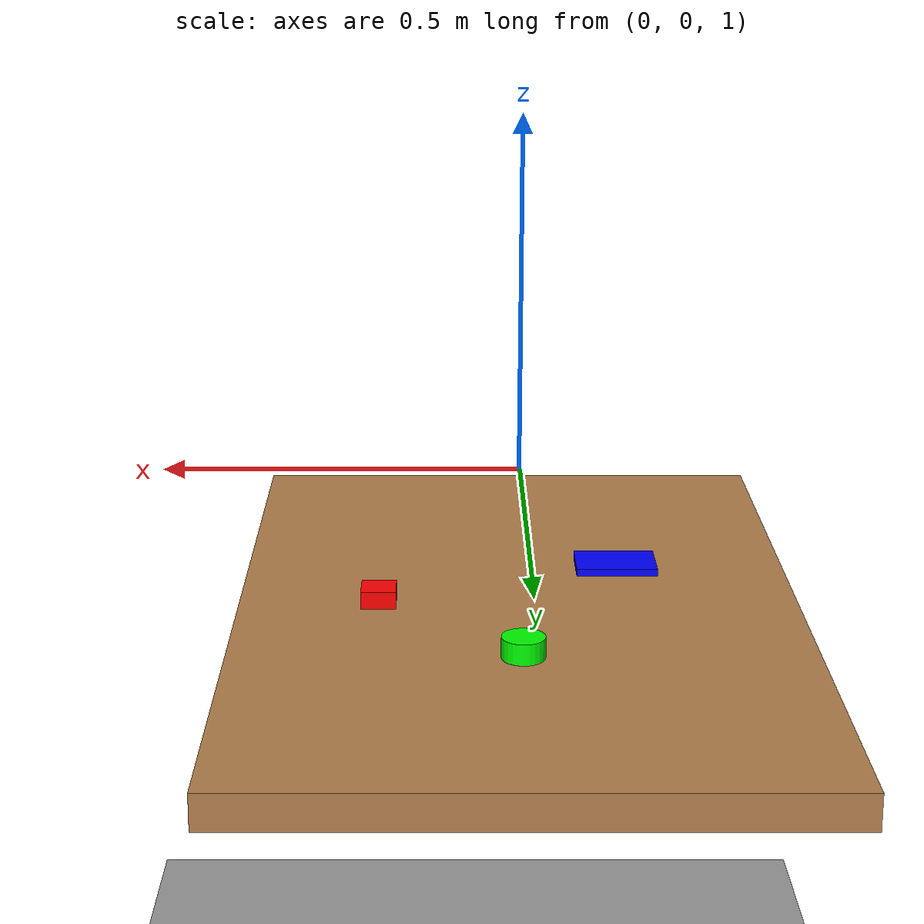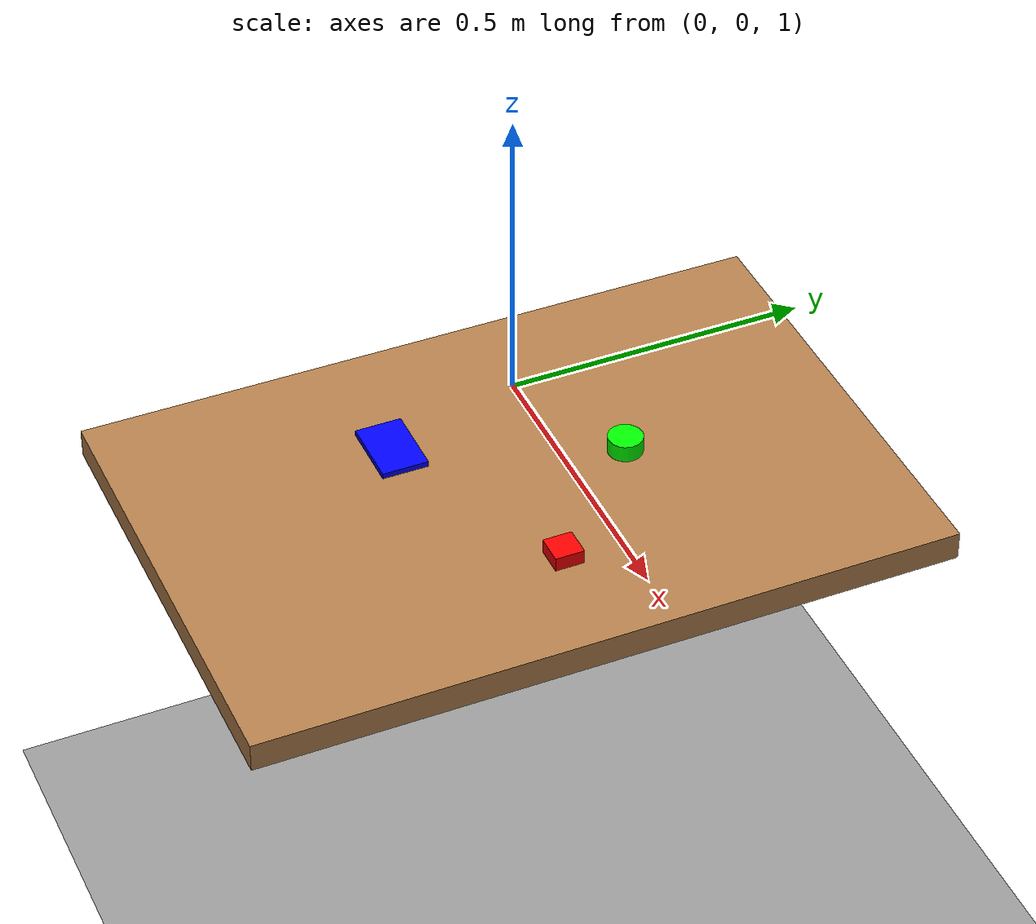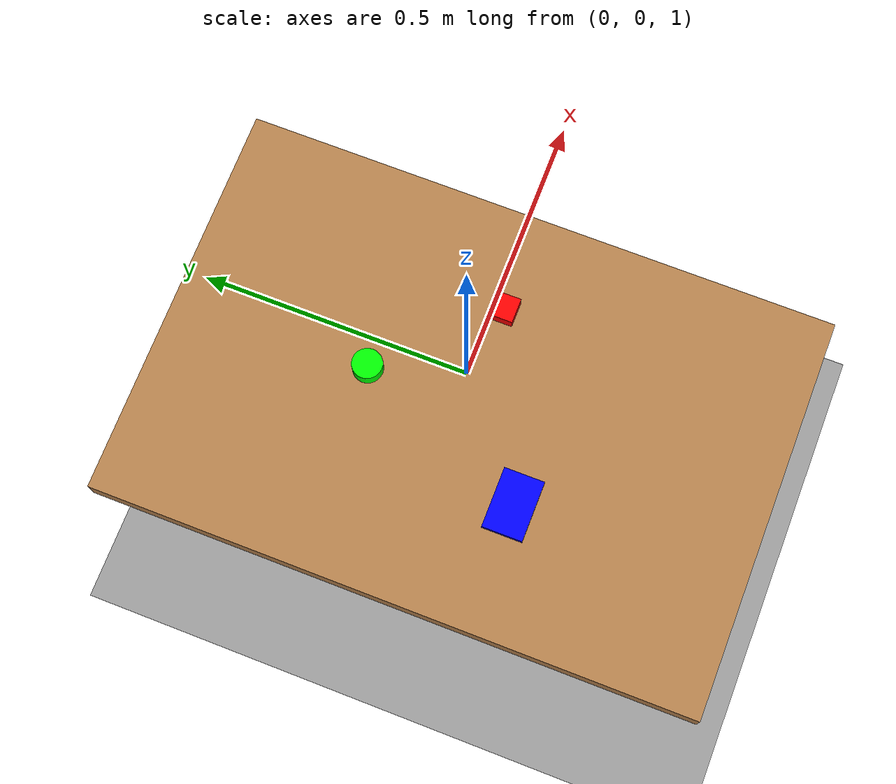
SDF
<?xml version="1.0" ?>
<sdf version="1.8">
  <world name="ur5_mesa_objetos">

    <!-- =========================
         Configuración general
         ========================= -->
    <gravity>0 0 -9.81</gravity>

    <!-- Luz tipo "sol" -->
    <light type="directional" name="sun">
      <cast_shadows>true</cast_shadows>
      <pose>0 0 10 0 0 0</pose>
      <diffuse>0.8 0.8 0.8 1</diffuse>
      <specular>0.2 0.2 0.2 1</specular>
      <attenuation>
        <range>1000</range>
        <constant>0.9</constant>
        <linear>0.01</linear>
        <quadratic>0.001</quadratic>
      </attenuation>
      <direction>-0.5 0.1 -0.9</direction>
    </light>

    <!-- Suelo plano -->
    <model name="ground_plane">
      <static>true</static>
      <pose>0 0 0 0 0 0</pose>
      <link name="link">
        <collision name="collision">
          <geometry>
            <plane>
              <normal>0 0 1</normal>
              <size>10 10</size>
            </plane>
          </geometry>
        </collision>
        <visual name="visual">
          <geometry>
            <plane>
              <normal>0 0 1</normal>
              <size>10 10</size>
            </plane>
          </geometry>
          <material>
            <ambient>0.6 0.6 0.6 1</ambient>
            <diffuse>0.6 0.6 0.6 1</diffuse>
          </material>
        </visual>
      </link>
    </model>

    <!-- =========================
         Mesa de ensayo
         ========================= -->
    <!-- Mesa: 0.8 x 1.2 m, grosor 5 cm, altura aprox 0.75 m -->
    <model name="mesa">
      <static>true</static>
      <pose>0 0 0.775 0 0 0</pose>
      <link name="link">
        <collision name="collision">
          <geometry>
            <box>
              <size>0.8 1.2 0.05</size>
            </box>
          </geometry>
        </collision>
        <visual name="visual">
          <geometry>
            <box>
              <size>0.8 1.2 0.05</size>
            </box>
          </geometry>
          <material>
            <ambient>0.7 0.5 0.3 1</ambient>
            <diffuse>0.7 0.5 0.3 1</diffuse>
          </material>
        </visual>
      </link>
    </model>

    <!--
      Altura de la superficie de la mesa:
        z_centro_mesa = 0.775
        grosor/2 = 0.025
        => z_superficie ≈ 0.800 m
      Por eso los objetos van con z = 0.80
    -->

    <!-- =========================
         Objetos de prueba
         ========================= -->

    <!-- Objeto 1: cubo rojo -->
    <model name="cubo_rojo">
      <pose>0.20 0.00 0.80 0 0 0</pose>
      <link name="link">
        <collision name="collision">
          <geometry>
            <box>
              <size>0.05 0.05 0.05</size>
            </box>
          </geometry>
        </collision>
        <visual name="visual">
          <geometry>
            <box>
              <size>0.05 0.05 0.05</size>
            </box>
          </geometry>
          <material>
            <ambient>1 0 0 1</ambient>
            <diffuse>1 0 0 1</diffuse>
          </material>
        </visual>
      </link>
    </model>

    <!-- Objeto 2: cilindro verde -->
    <model name="cilindro_verde">
      <pose>0.00 0.20 0.80 0 0 0</pose>
      <link name="link">
        <collision name="collision">
          <geometry>
            <cylinder>
              <radius>0.03</radius>
              <length>0.06</length>
            </cylinder>
          </geometry>
        </collision>
        <visual name="visual">
          <geometry>
            <cylinder>
              <radius>0.03</radius>
              <length>0.06</length>
            </cylinder>
          </geometry>
          <material>
            <ambient>0 1 0 1</ambient>
            <diffuse>0 1 0 1</diffuse>
          </material>
        </visual>
      </link>
    </model>

    <!-- Objeto 3: caja azul tipo "libro" -->
    <model name="caja_azul">
      <pose>-0.15 -0.15 0.80 0 0 0</pose>
      <link name="link">
        <collision name="collision">
          <geometry>
            <box>
              <size>0.12 0.08 0.02</size>
            </box>
          </geometry>
        </collision>
        <visual name="visual">
          <geometry>
            <box>
              <size>0.12 0.08 0.02</size>
            </box>
          </geometry>
          <material>
            <ambient>0 0 1 1</ambient>
            <diffuse>0 0 1 1</diffuse>
          </material>
        </visual>
      </link>
    </model>

  </world>
</sdf>
